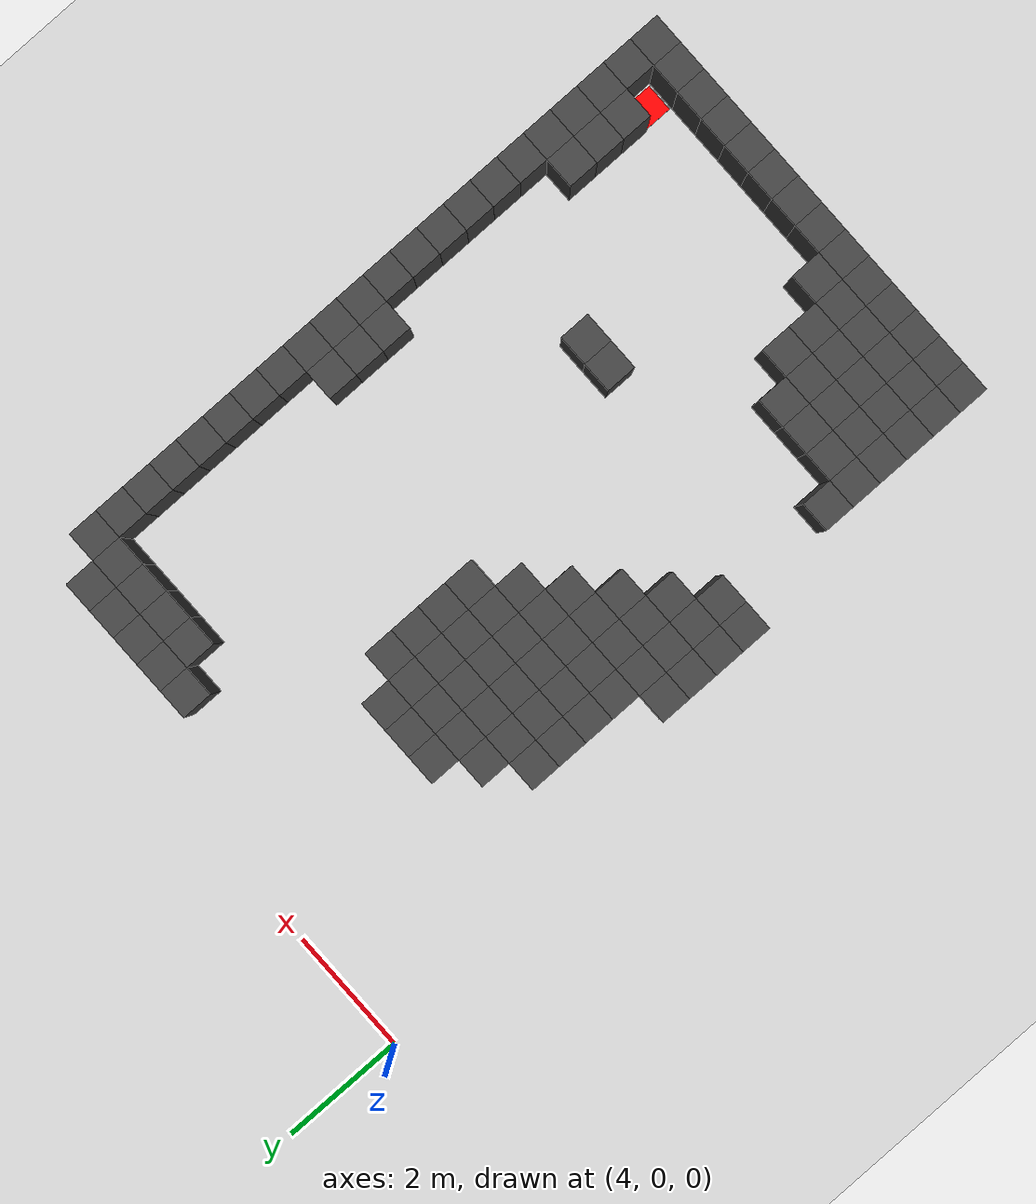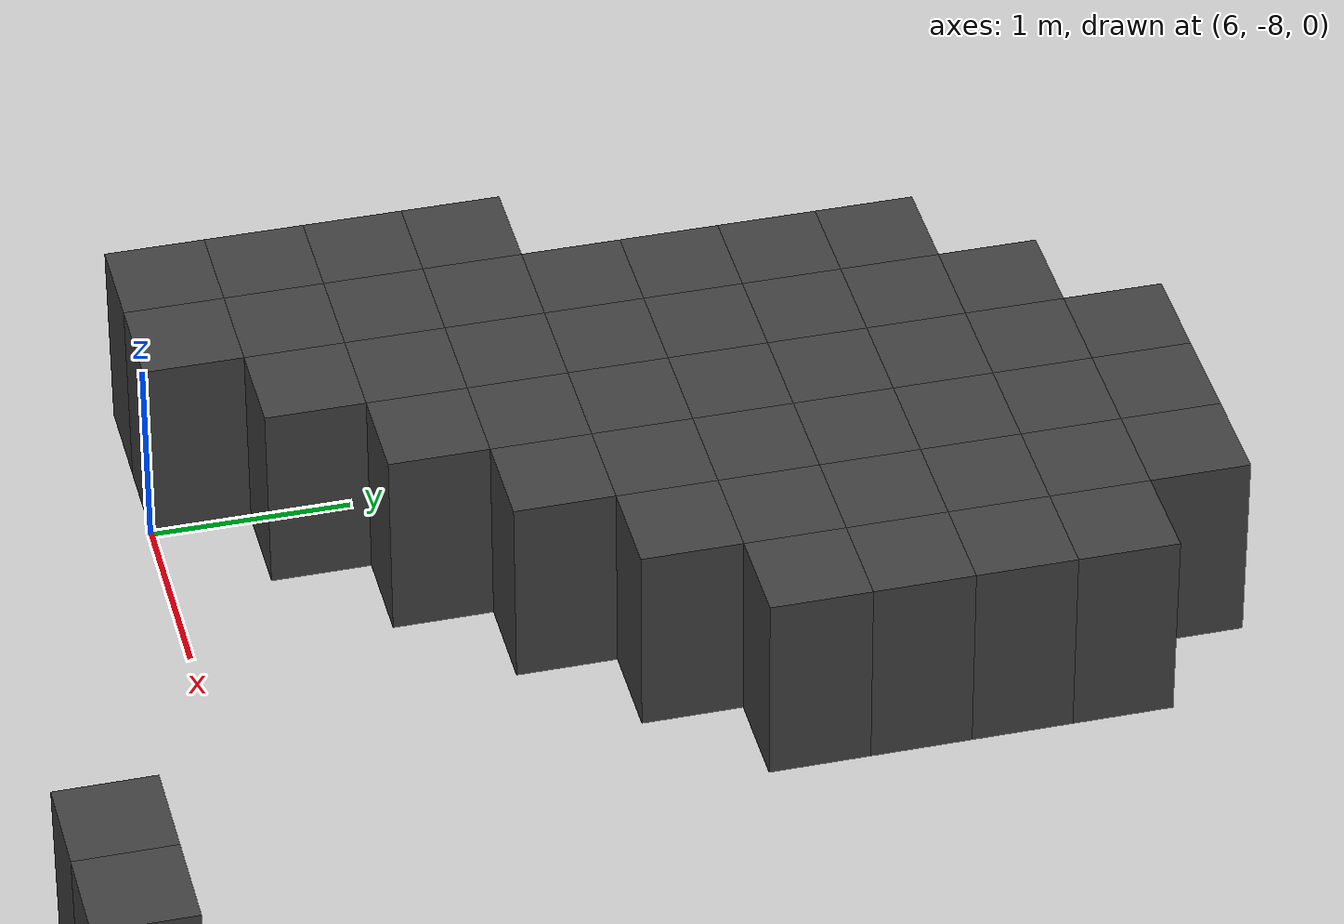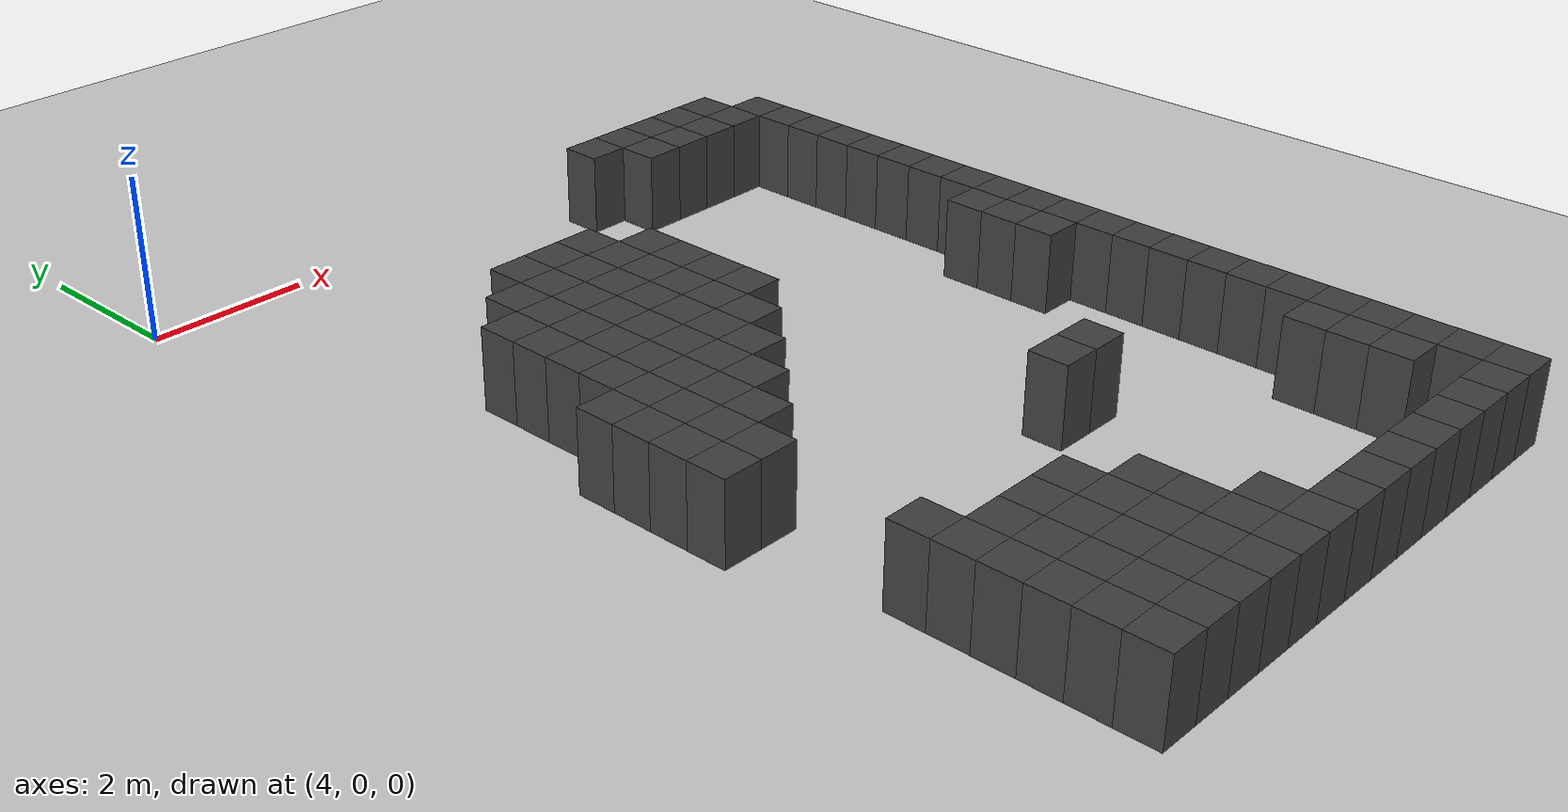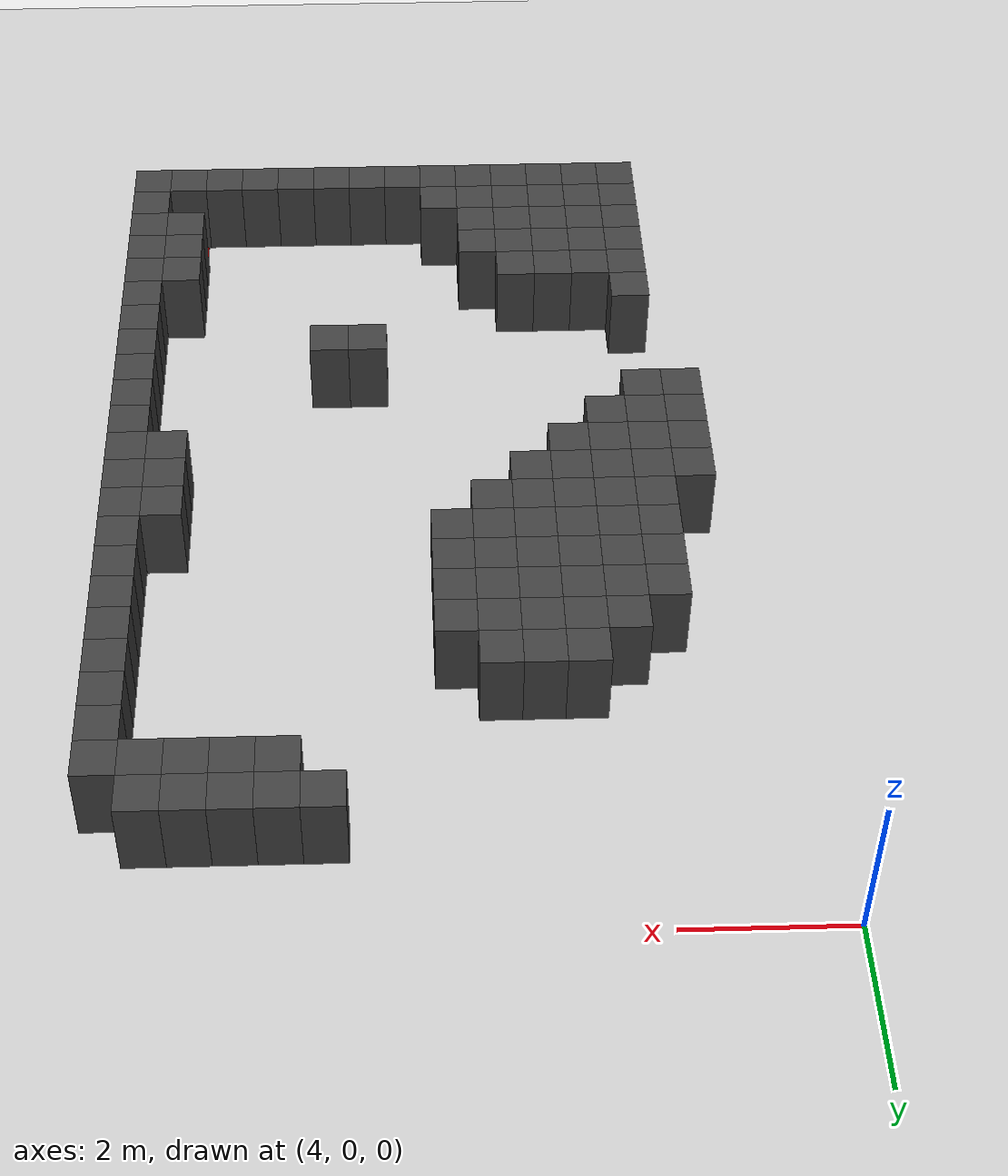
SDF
<sdf version="1.7">
 <world name="map_9826">
  <model name="ground_plane">
   <static>true</static>
   <link name="link">
    <collision name="collision">
     <geometry><plane><normal>0 0 1</normal><size>200 200</size></plane></geometry>
    </collision>
    <visual name="visual">
     <geometry><plane><normal>0 0 1</normal><size>200 200</size></plane></geometry>
     <material><ambient>0.8 0.8 0.8 1</ambient><diffuse>0.8 0.8 0.8 1</diffuse></material>
    </visual>
   </link>
  </model>
  <model name="maze_environment">
   <static>true</static>
   <link name="wall_601">
    <pose>9.750 -1.250 0.500 0 0 0</pose>
    <collision name="col"><geometry><box><size>0.5 0.5 1.0</size></box></geometry></collision>
    <visual name="vis">
     <geometry><box><size>0.5 0.5 1.0</size></box></geometry>
     <material><ambient>0.15 0.15 0.15 1</ambient><diffuse>0.25 0.25 0.25 1</diffuse></material>
    </visual>
   </link>
   <link name="wall_602">
    <pose>10.250 -1.250 0.500 0 0 0</pose>
    <collision name="col"><geometry><box><size>0.5 0.5 1.0</size></box></geometry></collision>
    <visual name="vis">
     <geometry><box><size>0.5 0.5 1.0</size></box></geometry>
     <material><ambient>0.15 0.15 0.15 1</ambient><diffuse>0.25 0.25 0.25 1</diffuse></material>
    </visual>
   </link>
   <link name="wall_603">
    <pose>10.750 -1.250 0.500 0 0 0</pose>
    <collision name="col"><geometry><box><size>0.5 0.5 1.0</size></box></geometry></collision>
    <visual name="vis">
     <geometry><box><size>0.5 0.5 1.0</size></box></geometry>
     <material><ambient>0.15 0.15 0.15 1</ambient><diffuse>0.25 0.25 0.25 1</diffuse></material>
    </visual>
   </link>
   <link name="wall_604">
    <pose>11.250 -1.250 0.500 0 0 0</pose>
    <collision name="col"><geometry><box><size>0.5 0.5 1.0</size></box></geometry></collision>
    <visual name="vis">
     <geometry><box><size>0.5 0.5 1.0</size></box></geometry>
     <material><ambient>0.15 0.15 0.15 1</ambient><diffuse>0.25 0.25 0.25 1</diffuse></material>
    </visual>
   </link>
   <link name="wall_605">
    <pose>11.750 -1.250 0.500 0 0 0</pose>
    <collision name="col"><geometry><box><size>0.5 0.5 1.0</size></box></geometry></collision>
    <visual name="vis">
     <geometry><box><size>0.5 0.5 1.0</size></box></geometry>
     <material><ambient>0.15 0.15 0.15 1</ambient><diffuse>0.25 0.25 0.25 1</diffuse></material>
    </visual>
   </link>
   <link name="wall_624">
    <pose>10.250 -1.750 0.500 0 0 0</pose>
    <collision name="col"><geometry><box><size>0.5 0.5 1.0</size></box></geometry></collision>
    <visual name="vis">
     <geometry><box><size>0.5 0.5 1.0</size></box></geometry>
     <material><ambient>0.15 0.15 0.15 1</ambient><diffuse>0.25 0.25 0.25 1</diffuse></material>
    </visual>
   </link>
   <link name="wall_625">
    <pose>10.750 -1.750 0.500 0 0 0</pose>
    <collision name="col"><geometry><box><size>0.5 0.5 1.0</size></box></geometry></collision>
    <visual name="vis">
     <geometry><box><size>0.5 0.5 1.0</size></box></geometry>
     <material><ambient>0.15 0.15 0.15 1</ambient><diffuse>0.25 0.25 0.25 1</diffuse></material>
    </visual>
   </link>
   <link name="wall_626">
    <pose>11.250 -1.750 0.500 0 0 0</pose>
    <collision name="col"><geometry><box><size>0.5 0.5 1.0</size></box></geometry></collision>
    <visual name="vis">
     <geometry><box><size>0.5 0.5 1.0</size></box></geometry>
     <material><ambient>0.15 0.15 0.15 1</ambient><diffuse>0.25 0.25 0.25 1</diffuse></material>
    </visual>
   </link>
   <link name="wall_627">
    <pose>11.750 -1.750 0.500 0 0 0</pose>
    <collision name="col"><geometry><box><size>0.5 0.5 1.0</size></box></geometry></collision>
    <visual name="vis">
     <geometry><box><size>0.5 0.5 1.0</size></box></geometry>
     <material><ambient>0.15 0.15 0.15 1</ambient><diffuse>0.25 0.25 0.25 1</diffuse></material>
    </visual>
   </link>
   <link name="wall_628">
    <pose>12.250 -1.750 0.500 0 0 0</pose>
    <collision name="col"><geometry><box><size>0.5 0.5 1.0</size></box></geometry></collision>
    <visual name="vis">
     <geometry><box><size>0.5 0.5 1.0</size></box></geometry>
     <material><ambient>0.15 0.15 0.15 1</ambient><diffuse>0.25 0.25 0.25 1</diffuse></material>
    </visual>
   </link>
   <link name="wall_645">
    <pose>12.250 -2.250 0.500 0 0 0</pose>
    <collision name="col"><geometry><box><size>0.5 0.5 1.0</size></box></geometry></collision>
    <visual name="vis">
     <geometry><box><size>0.5 0.5 1.0</size></box></geometry>
     <material><ambient>0.15 0.15 0.15 1</ambient><diffuse>0.25 0.25 0.25 1</diffuse></material>
    </visual>
   </link>
   <link name="wall_660">
    <pose>12.250 -2.750 0.500 0 0 0</pose>
    <collision name="col"><geometry><box><size>0.5 0.5 1.0</size></box></geometry></collision>
    <visual name="vis">
     <geometry><box><size>0.5 0.5 1.0</size></box></geometry>
     <material><ambient>0.15 0.15 0.15 1</ambient><diffuse>0.25 0.25 0.25 1</diffuse></material>
    </visual>
   </link>
   <link name="wall_673">
    <pose>6.750 -3.250 0.500 0 0 0</pose>
    <collision name="col"><geometry><box><size>0.5 0.5 1.0</size></box></geometry></collision>
    <visual name="vis">
     <geometry><box><size>0.5 0.5 1.0</size></box></geometry>
     <material><ambient>0.15 0.15 0.15 1</ambient><diffuse>0.25 0.25 0.25 1</diffuse></material>
    </visual>
   </link>
   <link name="wall_674">
    <pose>7.250 -3.250 0.500 0 0 0</pose>
    <collision name="col"><geometry><box><size>0.5 0.5 1.0</size></box></geometry></collision>
    <visual name="vis">
     <geometry><box><size>0.5 0.5 1.0</size></box></geometry>
     <material><ambient>0.15 0.15 0.15 1</ambient><diffuse>0.25 0.25 0.25 1</diffuse></material>
    </visual>
   </link>
   <link name="wall_675">
    <pose>7.750 -3.250 0.500 0 0 0</pose>
    <collision name="col"><geometry><box><size>0.5 0.5 1.0</size></box></geometry></collision>
    <visual name="vis">
     <geometry><box><size>0.5 0.5 1.0</size></box></geometry>
     <material><ambient>0.15 0.15 0.15 1</ambient><diffuse>0.25 0.25 0.25 1</diffuse></material>
    </visual>
   </link>
   <link name="wall_676">
    <pose>12.250 -3.250 0.500 0 0 0</pose>
    <collision name="col"><geometry><box><size>0.5 0.5 1.0</size></box></geometry></collision>
    <visual name="vis">
     <geometry><box><size>0.5 0.5 1.0</size></box></geometry>
     <material><ambient>0.15 0.15 0.15 1</ambient><diffuse>0.25 0.25 0.25 1</diffuse></material>
    </visual>
   </link>
   <link name="wall_685">
    <pose>6.250 -3.750 0.500 0 0 0</pose>
    <collision name="col"><geometry><box><size>0.5 0.5 1.0</size></box></geometry></collision>
    <visual name="vis">
     <geometry><box><size>0.5 0.5 1.0</size></box></geometry>
     <material><ambient>0.15 0.15 0.15 1</ambient><diffuse>0.25 0.25 0.25 1</diffuse></material>
    </visual>
   </link>
   <link name="wall_686">
    <pose>6.750 -3.750 0.500 0 0 0</pose>
    <collision name="col"><geometry><box><size>0.5 0.5 1.0</size></box></geometry></collision>
    <visual name="vis">
     <geometry><box><size>0.5 0.5 1.0</size></box></geometry>
     <material><ambient>0.15 0.15 0.15 1</ambient><diffuse>0.25 0.25 0.25 1</diffuse></material>
    </visual>
   </link>
   <link name="wall_687">
    <pose>7.250 -3.750 0.500 0 0 0</pose>
    <collision name="col"><geometry><box><size>0.5 0.5 1.0</size></box></geometry></collision>
    <visual name="vis">
     <geometry><box><size>0.5 0.5 1.0</size></box></geometry>
     <material><ambient>0.15 0.15 0.15 1</ambient><diffuse>0.25 0.25 0.25 1</diffuse></material>
    </visual>
   </link>
   <link name="wall_688">
    <pose>7.750 -3.750 0.500 0 0 0</pose>
    <collision name="col"><geometry><box><size>0.5 0.5 1.0</size></box></geometry></collision>
    <visual name="vis">
     <geometry><box><size>0.5 0.5 1.0</size></box></geometry>
     <material><ambient>0.15 0.15 0.15 1</ambient><diffuse>0.25 0.25 0.25 1</diffuse></material>
    </visual>
   </link>
   <link name="wall_689">
    <pose>8.250 -3.750 0.500 0 0 0</pose>
    <collision name="col"><geometry><box><size>0.5 0.5 1.0</size></box></geometry></collision>
    <visual name="vis">
     <geometry><box><size>0.5 0.5 1.0</size></box></geometry>
     <material><ambient>0.15 0.15 0.15 1</ambient><diffuse>0.25 0.25 0.25 1</diffuse></material>
    </visual>
   </link>
   <link name="wall_690">
    <pose>12.250 -3.750 0.500 0 0 0</pose>
    <collision name="col"><geometry><box><size>0.5 0.5 1.0</size></box></geometry></collision>
    <visual name="vis">
     <geometry><box><size>0.5 0.5 1.0</size></box></geometry>
     <material><ambient>0.15 0.15 0.15 1</ambient><diffuse>0.25 0.25 0.25 1</diffuse></material>
    </visual>
   </link>
   <link name="wall_695">
    <pose>5.750 -4.250 0.500 0 0 0</pose>
    <collision name="col"><geometry><box><size>0.5 0.5 1.0</size></box></geometry></collision>
    <visual name="vis">
     <geometry><box><size>0.5 0.5 1.0</size></box></geometry>
     <material><ambient>0.15 0.15 0.15 1</ambient><diffuse>0.25 0.25 0.25 1</diffuse></material>
    </visual>
   </link>
   <link name="wall_696">
    <pose>6.250 -4.250 0.500 0 0 0</pose>
    <collision name="col"><geometry><box><size>0.5 0.5 1.0</size></box></geometry></collision>
    <visual name="vis">
     <geometry><box><size>0.5 0.5 1.0</size></box></geometry>
     <material><ambient>0.15 0.15 0.15 1</ambient><diffuse>0.25 0.25 0.25 1</diffuse></material>
    </visual>
   </link>
   <link name="wall_697">
    <pose>6.750 -4.250 0.500 0 0 0</pose>
    <collision name="col"><geometry><box><size>0.5 0.5 1.0</size></box></geometry></collision>
    <visual name="vis">
     <geometry><box><size>0.5 0.5 1.0</size></box></geometry>
     <material><ambient>0.15 0.15 0.15 1</ambient><diffuse>0.25 0.25 0.25 1</diffuse></material>
    </visual>
   </link>
   <link name="wall_698">
    <pose>7.250 -4.250 0.500 0 0 0</pose>
    <collision name="col"><geometry><box><size>0.5 0.5 1.0</size></box></geometry></collision>
    <visual name="vis">
     <geometry><box><size>0.5 0.5 1.0</size></box></geometry>
     <material><ambient>0.15 0.15 0.15 1</ambient><diffuse>0.25 0.25 0.25 1</diffuse></material>
    </visual>
   </link>
   <link name="wall_699">
    <pose>7.750 -4.250 0.500 0 0 0</pose>
    <collision name="col"><geometry><box><size>0.5 0.5 1.0</size></box></geometry></collision>
    <visual name="vis">
     <geometry><box><size>0.5 0.5 1.0</size></box></geometry>
     <material><ambient>0.15 0.15 0.15 1</ambient><diffuse>0.25 0.25 0.25 1</diffuse></material>
    </visual>
   </link>
   <link name="wall_700">
    <pose>8.250 -4.250 0.500 0 0 0</pose>
    <collision name="col"><geometry><box><size>0.5 0.5 1.0</size></box></geometry></collision>
    <visual name="vis">
     <geometry><box><size>0.5 0.5 1.0</size></box></geometry>
     <material><ambient>0.15 0.15 0.15 1</ambient><diffuse>0.25 0.25 0.25 1</diffuse></material>
    </visual>
   </link>
   <link name="wall_701">
    <pose>12.250 -4.250 0.500 0 0 0</pose>
    <collision name="col"><geometry><box><size>0.5 0.5 1.0</size></box></geometry></collision>
    <visual name="vis">
     <geometry><box><size>0.5 0.5 1.0</size></box></geometry>
     <material><ambient>0.15 0.15 0.15 1</ambient><diffuse>0.25 0.25 0.25 1</diffuse></material>
    </visual>
   </link>
   <link name="wall_710">
    <pose>5.750 -4.750 0.500 0 0 0</pose>
    <collision name="col"><geometry><box><size>0.5 0.5 1.0</size></box></geometry></collision>
    <visual name="vis">
     <geometry><box><size>0.5 0.5 1.0</size></box></geometry>
     <material><ambient>0.15 0.15 0.15 1</ambient><diffuse>0.25 0.25 0.25 1</diffuse></material>
    </visual>
   </link>
   <link name="wall_711">
    <pose>6.250 -4.750 0.500 0 0 0</pose>
    <collision name="col"><geometry><box><size>0.5 0.5 1.0</size></box></geometry></collision>
    <visual name="vis">
     <geometry><box><size>0.5 0.5 1.0</size></box></geometry>
     <material><ambient>0.15 0.15 0.15 1</ambient><diffuse>0.25 0.25 0.25 1</diffuse></material>
    </visual>
   </link>
   <link name="wall_712">
    <pose>6.750 -4.750 0.500 0 0 0</pose>
    <collision name="col"><geometry><box><size>0.5 0.5 1.0</size></box></geometry></collision>
    <visual name="vis">
     <geometry><box><size>0.5 0.5 1.0</size></box></geometry>
     <material><ambient>0.15 0.15 0.15 1</ambient><diffuse>0.25 0.25 0.25 1</diffuse></material>
    </visual>
   </link>
   <link name="wall_713">
    <pose>7.250 -4.750 0.500 0 0 0</pose>
    <collision name="col"><geometry><box><size>0.5 0.5 1.0</size></box></geometry></collision>
    <visual name="vis">
     <geometry><box><size>0.5 0.5 1.0</size></box></geometry>
     <material><ambient>0.15 0.15 0.15 1</ambient><diffuse>0.25 0.25 0.25 1</diffuse></material>
    </visual>
   </link>
   <link name="wall_714">
    <pose>7.750 -4.750 0.500 0 0 0</pose>
    <collision name="col"><geometry><box><size>0.5 0.5 1.0</size></box></geometry></collision>
    <visual name="vis">
     <geometry><box><size>0.5 0.5 1.0</size></box></geometry>
     <material><ambient>0.15 0.15 0.15 1</ambient><diffuse>0.25 0.25 0.25 1</diffuse></material>
    </visual>
   </link>
   <link name="wall_715">
    <pose>8.250 -4.750 0.500 0 0 0</pose>
    <collision name="col"><geometry><box><size>0.5 0.5 1.0</size></box></geometry></collision>
    <visual name="vis">
     <geometry><box><size>0.5 0.5 1.0</size></box></geometry>
     <material><ambient>0.15 0.15 0.15 1</ambient><diffuse>0.25 0.25 0.25 1</diffuse></material>
    </visual>
   </link>
   <link name="wall_716">
    <pose>12.250 -4.750 0.500 0 0 0</pose>
    <collision name="col"><geometry><box><size>0.5 0.5 1.0</size></box></geometry></collision>
    <visual name="vis">
     <geometry><box><size>0.5 0.5 1.0</size></box></geometry>
     <material><ambient>0.15 0.15 0.15 1</ambient><diffuse>0.25 0.25 0.25 1</diffuse></material>
    </visual>
   </link>
   <link name="wall_728">
    <pose>5.750 -5.250 0.500 0 0 0</pose>
    <collision name="col"><geometry><box><size>0.5 0.5 1.0</size></box></geometry></collision>
    <visual name="vis">
     <geometry><box><size>0.5 0.5 1.0</size></box></geometry>
     <material><ambient>0.15 0.15 0.15 1</ambient><diffuse>0.25 0.25 0.25 1</diffuse></material>
    </visual>
   </link>
   <link name="wall_729">
    <pose>6.250 -5.250 0.500 0 0 0</pose>
    <collision name="col"><geometry><box><size>0.5 0.5 1.0</size></box></geometry></collision>
    <visual name="vis">
     <geometry><box><size>0.5 0.5 1.0</size></box></geometry>
     <material><ambient>0.15 0.15 0.15 1</ambient><diffuse>0.25 0.25 0.25 1</diffuse></material>
    </visual>
   </link>
   <link name="wall_730">
    <pose>6.750 -5.250 0.500 0 0 0</pose>
    <collision name="col"><geometry><box><size>0.5 0.5 1.0</size></box></geometry></collision>
    <visual name="vis">
     <geometry><box><size>0.5 0.5 1.0</size></box></geometry>
     <material><ambient>0.15 0.15 0.15 1</ambient><diffuse>0.25 0.25 0.25 1</diffuse></material>
    </visual>
   </link>
   <link name="wall_731">
    <pose>7.250 -5.250 0.500 0 0 0</pose>
    <collision name="col"><geometry><box><size>0.5 0.5 1.0</size></box></geometry></collision>
    <visual name="vis">
     <geometry><box><size>0.5 0.5 1.0</size></box></geometry>
     <material><ambient>0.15 0.15 0.15 1</ambient><diffuse>0.25 0.25 0.25 1</diffuse></material>
    </visual>
   </link>
   <link name="wall_732">
    <pose>7.750 -5.250 0.500 0 0 0</pose>
    <collision name="col"><geometry><box><size>0.5 0.5 1.0</size></box></geometry></collision>
    <visual name="vis">
     <geometry><box><size>0.5 0.5 1.0</size></box></geometry>
     <material><ambient>0.15 0.15 0.15 1</ambient><diffuse>0.25 0.25 0.25 1</diffuse></material>
    </visual>
   </link>
   <link name="wall_733">
    <pose>8.250 -5.250 0.500 0 0 0</pose>
    <collision name="col"><geometry><box><size>0.5 0.5 1.0</size></box></geometry></collision>
    <visual name="vis">
     <geometry><box><size>0.5 0.5 1.0</size></box></geometry>
     <material><ambient>0.15 0.15 0.15 1</ambient><diffuse>0.25 0.25 0.25 1</diffuse></material>
    </visual>
   </link>
   <link name="wall_734">
    <pose>12.250 -5.250 0.500 0 0 0</pose>
    <collision name="col"><geometry><box><size>0.5 0.5 1.0</size></box></geometry></collision>
    <visual name="vis">
     <geometry><box><size>0.5 0.5 1.0</size></box></geometry>
     <material><ambient>0.15 0.15 0.15 1</ambient><diffuse>0.25 0.25 0.25 1</diffuse></material>
    </visual>
   </link>
   <link name="wall_748">
    <pose>5.750 -5.750 0.500 0 0 0</pose>
    <collision name="col"><geometry><box><size>0.5 0.5 1.0</size></box></geometry></collision>
    <visual name="vis">
     <geometry><box><size>0.5 0.5 1.0</size></box></geometry>
     <material><ambient>0.15 0.15 0.15 1</ambient><diffuse>0.25 0.25 0.25 1</diffuse></material>
    </visual>
   </link>
   <link name="wall_749">
    <pose>6.250 -5.750 0.500 0 0 0</pose>
    <collision name="col"><geometry><box><size>0.5 0.5 1.0</size></box></geometry></collision>
    <visual name="vis">
     <geometry><box><size>0.5 0.5 1.0</size></box></geometry>
     <material><ambient>0.15 0.15 0.15 1</ambient><diffuse>0.25 0.25 0.25 1</diffuse></material>
    </visual>
   </link>
   <link name="wall_750">
    <pose>6.750 -5.750 0.500 0 0 0</pose>
    <collision name="col"><geometry><box><size>0.5 0.5 1.0</size></box></geometry></collision>
    <visual name="vis">
     <geometry><box><size>0.5 0.5 1.0</size></box></geometry>
     <material><ambient>0.15 0.15 0.15 1</ambient><diffuse>0.25 0.25 0.25 1</diffuse></material>
    </visual>
   </link>
   <link name="wall_751">
    <pose>7.250 -5.750 0.500 0 0 0</pose>
    <collision name="col"><geometry><box><size>0.5 0.5 1.0</size></box></geometry></collision>
    <visual name="vis">
     <geometry><box><size>0.5 0.5 1.0</size></box></geometry>
     <material><ambient>0.15 0.15 0.15 1</ambient><diffuse>0.25 0.25 0.25 1</diffuse></material>
    </visual>
   </link>
   <link name="wall_752">
    <pose>7.750 -5.750 0.500 0 0 0</pose>
    <collision name="col"><geometry><box><size>0.5 0.5 1.0</size></box></geometry></collision>
    <visual name="vis">
     <geometry><box><size>0.5 0.5 1.0</size></box></geometry>
     <material><ambient>0.15 0.15 0.15 1</ambient><diffuse>0.25 0.25 0.25 1</diffuse></material>
    </visual>
   </link>
   <link name="wall_753">
    <pose>11.750 -5.750 0.500 0 0 0</pose>
    <collision name="col"><geometry><box><size>0.5 0.5 1.0</size></box></geometry></collision>
    <visual name="vis">
     <geometry><box><size>0.5 0.5 1.0</size></box></geometry>
     <material><ambient>0.15 0.15 0.15 1</ambient><diffuse>0.25 0.25 0.25 1</diffuse></material>
    </visual>
   </link>
   <link name="wall_754">
    <pose>12.250 -5.750 0.500 0 0 0</pose>
    <collision name="col"><geometry><box><size>0.5 0.5 1.0</size></box></geometry></collision>
    <visual name="vis">
     <geometry><box><size>0.5 0.5 1.0</size></box></geometry>
     <material><ambient>0.15 0.15 0.15 1</ambient><diffuse>0.25 0.25 0.25 1</diffuse></material>
    </visual>
   </link>
   <link name="wall_771">
    <pose>5.250 -6.250 0.500 0 0 0</pose>
    <collision name="col"><geometry><box><size>0.5 0.5 1.0</size></box></geometry></collision>
    <visual name="vis">
     <geometry><box><size>0.5 0.5 1.0</size></box></geometry>
     <material><ambient>0.15 0.15 0.15 1</ambient><diffuse>0.25 0.25 0.25 1</diffuse></material>
    </visual>
   </link>
   <link name="wall_772">
    <pose>5.750 -6.250 0.500 0 0 0</pose>
    <collision name="col"><geometry><box><size>0.5 0.5 1.0</size></box></geometry></collision>
    <visual name="vis">
     <geometry><box><size>0.5 0.5 1.0</size></box></geometry>
     <material><ambient>0.15 0.15 0.15 1</ambient><diffuse>0.25 0.25 0.25 1</diffuse></material>
    </visual>
   </link>
   <link name="wall_773">
    <pose>6.250 -6.250 0.500 0 0 0</pose>
    <collision name="col"><geometry><box><size>0.5 0.5 1.0</size></box></geometry></collision>
    <visual name="vis">
     <geometry><box><size>0.5 0.5 1.0</size></box></geometry>
     <material><ambient>0.15 0.15 0.15 1</ambient><diffuse>0.25 0.25 0.25 1</diffuse></material>
    </visual>
   </link>
   <link name="wall_774">
    <pose>6.750 -6.250 0.500 0 0 0</pose>
    <collision name="col"><geometry><box><size>0.5 0.5 1.0</size></box></geometry></collision>
    <visual name="vis">
     <geometry><box><size>0.5 0.5 1.0</size></box></geometry>
     <material><ambient>0.15 0.15 0.15 1</ambient><diffuse>0.25 0.25 0.25 1</diffuse></material>
    </visual>
   </link>
   <link name="wall_775">
    <pose>7.250 -6.250 0.500 0 0 0</pose>
    <collision name="col"><geometry><box><size>0.5 0.5 1.0</size></box></geometry></collision>
    <visual name="vis">
     <geometry><box><size>0.5 0.5 1.0</size></box></geometry>
     <material><ambient>0.15 0.15 0.15 1</ambient><diffuse>0.25 0.25 0.25 1</diffuse></material>
    </visual>
   </link>
   <link name="wall_776">
    <pose>11.750 -6.250 0.500 0 0 0</pose>
    <collision name="col"><geometry><box><size>0.5 0.5 1.0</size></box></geometry></collision>
    <visual name="vis">
     <geometry><box><size>0.5 0.5 1.0</size></box></geometry>
     <material><ambient>0.15 0.15 0.15 1</ambient><diffuse>0.25 0.25 0.25 1</diffuse></material>
    </visual>
   </link>
   <link name="wall_777">
    <pose>12.250 -6.250 0.500 0 0 0</pose>
    <collision name="col"><geometry><box><size>0.5 0.5 1.0</size></box></geometry></collision>
    <visual name="vis">
     <geometry><box><size>0.5 0.5 1.0</size></box></geometry>
     <material><ambient>0.15 0.15 0.15 1</ambient><diffuse>0.25 0.25 0.25 1</diffuse></material>
    </visual>
   </link>
   <link name="wall_794">
    <pose>5.250 -6.750 0.500 0 0 0</pose>
    <collision name="col"><geometry><box><size>0.5 0.5 1.0</size></box></geometry></collision>
    <visual name="vis">
     <geometry><box><size>0.5 0.5 1.0</size></box></geometry>
     <material><ambient>0.15 0.15 0.15 1</ambient><diffuse>0.25 0.25 0.25 1</diffuse></material>
    </visual>
   </link>
   <link name="wall_795">
    <pose>5.750 -6.750 0.500 0 0 0</pose>
    <collision name="col"><geometry><box><size>0.5 0.5 1.0</size></box></geometry></collision>
    <visual name="vis">
     <geometry><box><size>0.5 0.5 1.0</size></box></geometry>
     <material><ambient>0.15 0.15 0.15 1</ambient><diffuse>0.25 0.25 0.25 1</diffuse></material>
    </visual>
   </link>
   <link name="wall_796">
    <pose>6.250 -6.750 0.500 0 0 0</pose>
    <collision name="col"><geometry><box><size>0.5 0.5 1.0</size></box></geometry></collision>
    <visual name="vis">
     <geometry><box><size>0.5 0.5 1.0</size></box></geometry>
     <material><ambient>0.15 0.15 0.15 1</ambient><diffuse>0.25 0.25 0.25 1</diffuse></material>
    </visual>
   </link>
   <link name="wall_797">
    <pose>6.750 -6.750 0.500 0 0 0</pose>
    <collision name="col"><geometry><box><size>0.5 0.5 1.0</size></box></geometry></collision>
    <visual name="vis">
     <geometry><box><size>0.5 0.5 1.0</size></box></geometry>
     <material><ambient>0.15 0.15 0.15 1</ambient><diffuse>0.25 0.25 0.25 1</diffuse></material>
    </visual>
   </link>
   <link name="wall_798">
    <pose>11.750 -6.750 0.500 0 0 0</pose>
    <collision name="col"><geometry><box><size>0.5 0.5 1.0</size></box></geometry></collision>
    <visual name="vis">
     <geometry><box><size>0.5 0.5 1.0</size></box></geometry>
     <material><ambient>0.15 0.15 0.15 1</ambient><diffuse>0.25 0.25 0.25 1</diffuse></material>
    </visual>
   </link>
   <link name="wall_799">
    <pose>12.250 -6.750 0.500 0 0 0</pose>
    <collision name="col"><geometry><box><size>0.5 0.5 1.0</size></box></geometry></collision>
    <visual name="vis">
     <geometry><box><size>0.5 0.5 1.0</size></box></geometry>
     <material><ambient>0.15 0.15 0.15 1</ambient><diffuse>0.25 0.25 0.25 1</diffuse></material>
    </visual>
   </link>
   <link name="wall_812">
    <pose>5.250 -7.250 0.500 0 0 0</pose>
    <collision name="col"><geometry><box><size>0.5 0.5 1.0</size></box></geometry></collision>
    <visual name="vis">
     <geometry><box><size>0.5 0.5 1.0</size></box></geometry>
     <material><ambient>0.15 0.15 0.15 1</ambient><diffuse>0.25 0.25 0.25 1</diffuse></material>
    </visual>
   </link>
   <link name="wall_813">
    <pose>5.750 -7.250 0.500 0 0 0</pose>
    <collision name="col"><geometry><box><size>0.5 0.5 1.0</size></box></geometry></collision>
    <visual name="vis">
     <geometry><box><size>0.5 0.5 1.0</size></box></geometry>
     <material><ambient>0.15 0.15 0.15 1</ambient><diffuse>0.25 0.25 0.25 1</diffuse></material>
    </visual>
   </link>
   <link name="wall_814">
    <pose>6.250 -7.250 0.500 0 0 0</pose>
    <collision name="col"><geometry><box><size>0.5 0.5 1.0</size></box></geometry></collision>
    <visual name="vis">
     <geometry><box><size>0.5 0.5 1.0</size></box></geometry>
     <material><ambient>0.15 0.15 0.15 1</ambient><diffuse>0.25 0.25 0.25 1</diffuse></material>
    </visual>
   </link>
   <link name="wall_815">
    <pose>12.250 -7.250 0.500 0 0 0</pose>
    <collision name="col"><geometry><box><size>0.5 0.5 1.0</size></box></geometry></collision>
    <visual name="vis">
     <geometry><box><size>0.5 0.5 1.0</size></box></geometry>
     <material><ambient>0.15 0.15 0.15 1</ambient><diffuse>0.25 0.25 0.25 1</diffuse></material>
    </visual>
   </link>
   <link name="wall_828">
    <pose>5.250 -7.750 0.500 0 0 0</pose>
    <collision name="col"><geometry><box><size>0.5 0.5 1.0</size></box></geometry></collision>
    <visual name="vis">
     <geometry><box><size>0.5 0.5 1.0</size></box></geometry>
     <material><ambient>0.15 0.15 0.15 1</ambient><diffuse>0.25 0.25 0.25 1</diffuse></material>
    </visual>
   </link>
   <link name="wall_829">
    <pose>5.750 -7.750 0.500 0 0 0</pose>
    <collision name="col"><geometry><box><size>0.5 0.5 1.0</size></box></geometry></collision>
    <visual name="vis">
     <geometry><box><size>0.5 0.5 1.0</size></box></geometry>
     <material><ambient>0.15 0.15 0.15 1</ambient><diffuse>0.25 0.25 0.25 1</diffuse></material>
    </visual>
   </link>
   <link name="wall_830">
    <pose>12.250 -7.750 0.500 0 0 0</pose>
    <collision name="col"><geometry><box><size>0.5 0.5 1.0</size></box></geometry></collision>
    <visual name="vis">
     <geometry><box><size>0.5 0.5 1.0</size></box></geometry>
     <material><ambient>0.15 0.15 0.15 1</ambient><diffuse>0.25 0.25 0.25 1</diffuse></material>
    </visual>
   </link>
   <link name="wall_848">
    <pose>12.250 -8.250 0.500 0 0 0</pose>
    <collision name="col"><geometry><box><size>0.5 0.5 1.0</size></box></geometry></collision>
    <visual name="vis">
     <geometry><box><size>0.5 0.5 1.0</size></box></geometry>
     <material><ambient>0.15 0.15 0.15 1</ambient><diffuse>0.25 0.25 0.25 1</diffuse></material>
    </visual>
   </link>
   <link name="wall_868">
    <pose>9.250 -8.750 0.500 0 0 0</pose>
    <collision name="col"><geometry><box><size>0.5 0.5 1.0</size></box></geometry></collision>
    <visual name="vis">
     <geometry><box><size>0.5 0.5 1.0</size></box></geometry>
     <material><ambient>0.15 0.15 0.15 1</ambient><diffuse>0.25 0.25 0.25 1</diffuse></material>
    </visual>
   </link>
   <link name="wall_869">
    <pose>9.750 -8.750 0.500 0 0 0</pose>
    <collision name="col"><geometry><box><size>0.5 0.5 1.0</size></box></geometry></collision>
    <visual name="vis">
     <geometry><box><size>0.5 0.5 1.0</size></box></geometry>
     <material><ambient>0.15 0.15 0.15 1</ambient><diffuse>0.25 0.25 0.25 1</diffuse></material>
    </visual>
   </link>
   <link name="wall_870">
    <pose>12.250 -8.750 0.500 0 0 0</pose>
    <collision name="col"><geometry><box><size>0.5 0.5 1.0</size></box></geometry></collision>
    <visual name="vis">
     <geometry><box><size>0.5 0.5 1.0</size></box></geometry>
     <material><ambient>0.15 0.15 0.15 1</ambient><diffuse>0.25 0.25 0.25 1</diffuse></material>
    </visual>
   </link>
   <link name="wall_894">
    <pose>12.250 -9.250 0.500 0 0 0</pose>
    <collision name="col"><geometry><box><size>0.5 0.5 1.0</size></box></geometry></collision>
    <visual name="vis">
     <geometry><box><size>0.5 0.5 1.0</size></box></geometry>
     <material><ambient>0.15 0.15 0.15 1</ambient><diffuse>0.25 0.25 0.25 1</diffuse></material>
    </visual>
   </link>
   <link name="wall_919">
    <pose>5.750 -9.750 0.500 0 0 0</pose>
    <collision name="col"><geometry><box><size>0.5 0.5 1.0</size></box></geometry></collision>
    <visual name="vis">
     <geometry><box><size>0.5 0.5 1.0</size></box></geometry>
     <material><ambient>0.15 0.15 0.15 1</ambient><diffuse>0.25 0.25 0.25 1</diffuse></material>
    </visual>
   </link>
   <link name="wall_920">
    <pose>12.250 -9.750 0.500 0 0 0</pose>
    <collision name="col"><geometry><box><size>0.5 0.5 1.0</size></box></geometry></collision>
    <visual name="vis">
     <geometry><box><size>0.5 0.5 1.0</size></box></geometry>
     <material><ambient>0.15 0.15 0.15 1</ambient><diffuse>0.25 0.25 0.25 1</diffuse></material>
    </visual>
   </link>
   <link name="wall_942">
    <pose>5.750 -10.250 0.500 0 0 0</pose>
    <collision name="col"><geometry><box><size>0.5 0.5 1.0</size></box></geometry></collision>
    <visual name="vis">
     <geometry><box><size>0.5 0.5 1.0</size></box></geometry>
     <material><ambient>0.15 0.15 0.15 1</ambient><diffuse>0.25 0.25 0.25 1</diffuse></material>
    </visual>
   </link>
   <link name="wall_943">
    <pose>6.250 -10.250 0.500 0 0 0</pose>
    <collision name="col"><geometry><box><size>0.5 0.5 1.0</size></box></geometry></collision>
    <visual name="vis">
     <geometry><box><size>0.5 0.5 1.0</size></box></geometry>
     <material><ambient>0.15 0.15 0.15 1</ambient><diffuse>0.25 0.25 0.25 1</diffuse></material>
    </visual>
   </link>
   <link name="wall_944">
    <pose>6.750 -10.250 0.500 0 0 0</pose>
    <collision name="col"><geometry><box><size>0.5 0.5 1.0</size></box></geometry></collision>
    <visual name="vis">
     <geometry><box><size>0.5 0.5 1.0</size></box></geometry>
     <material><ambient>0.15 0.15 0.15 1</ambient><diffuse>0.25 0.25 0.25 1</diffuse></material>
    </visual>
   </link>
   <link name="wall_945">
    <pose>7.250 -10.250 0.500 0 0 0</pose>
    <collision name="col"><geometry><box><size>0.5 0.5 1.0</size></box></geometry></collision>
    <visual name="vis">
     <geometry><box><size>0.5 0.5 1.0</size></box></geometry>
     <material><ambient>0.15 0.15 0.15 1</ambient><diffuse>0.25 0.25 0.25 1</diffuse></material>
    </visual>
   </link>
   <link name="wall_946">
    <pose>11.750 -10.250 0.500 0 0 0</pose>
    <collision name="col"><geometry><box><size>0.5 0.5 1.0</size></box></geometry></collision>
    <visual name="vis">
     <geometry><box><size>0.5 0.5 1.0</size></box></geometry>
     <material><ambient>0.15 0.15 0.15 1</ambient><diffuse>0.25 0.25 0.25 1</diffuse></material>
    </visual>
   </link>
   <link name="wall_947">
    <pose>12.250 -10.250 0.500 0 0 0</pose>
    <collision name="col"><geometry><box><size>0.5 0.5 1.0</size></box></geometry></collision>
    <visual name="vis">
     <geometry><box><size>0.5 0.5 1.0</size></box></geometry>
     <material><ambient>0.15 0.15 0.15 1</ambient><diffuse>0.25 0.25 0.25 1</diffuse></material>
    </visual>
   </link>
   <link name="wall_964">
    <pose>5.750 -10.750 0.500 0 0 0</pose>
    <collision name="col"><geometry><box><size>0.5 0.5 1.0</size></box></geometry></collision>
    <visual name="vis">
     <geometry><box><size>0.5 0.5 1.0</size></box></geometry>
     <material><ambient>0.15 0.15 0.15 1</ambient><diffuse>0.25 0.25 0.25 1</diffuse></material>
    </visual>
   </link>
   <link name="wall_965">
    <pose>6.250 -10.750 0.500 0 0 0</pose>
    <collision name="col"><geometry><box><size>0.5 0.5 1.0</size></box></geometry></collision>
    <visual name="vis">
     <geometry><box><size>0.5 0.5 1.0</size></box></geometry>
     <material><ambient>0.15 0.15 0.15 1</ambient><diffuse>0.25 0.25 0.25 1</diffuse></material>
    </visual>
   </link>
   <link name="wall_966">
    <pose>6.750 -10.750 0.500 0 0 0</pose>
    <collision name="col"><geometry><box><size>0.5 0.5 1.0</size></box></geometry></collision>
    <visual name="vis">
     <geometry><box><size>0.5 0.5 1.0</size></box></geometry>
     <material><ambient>0.15 0.15 0.15 1</ambient><diffuse>0.25 0.25 0.25 1</diffuse></material>
    </visual>
   </link>
   <link name="wall_967">
    <pose>7.250 -10.750 0.500 0 0 0</pose>
    <collision name="col"><geometry><box><size>0.5 0.5 1.0</size></box></geometry></collision>
    <visual name="vis">
     <geometry><box><size>0.5 0.5 1.0</size></box></geometry>
     <material><ambient>0.15 0.15 0.15 1</ambient><diffuse>0.25 0.25 0.25 1</diffuse></material>
    </visual>
   </link>
   <link name="wall_968">
    <pose>7.750 -10.750 0.500 0 0 0</pose>
    <collision name="col"><geometry><box><size>0.5 0.5 1.0</size></box></geometry></collision>
    <visual name="vis">
     <geometry><box><size>0.5 0.5 1.0</size></box></geometry>
     <material><ambient>0.15 0.15 0.15 1</ambient><diffuse>0.25 0.25 0.25 1</diffuse></material>
    </visual>
   </link>
   <link name="wall_969">
    <pose>11.750 -10.750 0.500 0 0 0</pose>
    <collision name="col"><geometry><box><size>0.5 0.5 1.0</size></box></geometry></collision>
    <visual name="vis">
     <geometry><box><size>0.5 0.5 1.0</size></box></geometry>
     <material><ambient>0.15 0.15 0.15 1</ambient><diffuse>0.25 0.25 0.25 1</diffuse></material>
    </visual>
   </link>
   <link name="wall_970">
    <pose>12.250 -10.750 0.500 0 0 0</pose>
    <collision name="col"><geometry><box><size>0.5 0.5 1.0</size></box></geometry></collision>
    <visual name="vis">
     <geometry><box><size>0.5 0.5 1.0</size></box></geometry>
     <material><ambient>0.15 0.15 0.15 1</ambient><diffuse>0.25 0.25 0.25 1</diffuse></material>
    </visual>
   </link>
   <link name="wall_988">
    <pose>5.750 -11.250 0.500 0 0 0</pose>
    <collision name="col"><geometry><box><size>0.5 0.5 1.0</size></box></geometry></collision>
    <visual name="vis">
     <geometry><box><size>0.5 0.5 1.0</size></box></geometry>
     <material><ambient>0.15 0.15 0.15 1</ambient><diffuse>0.25 0.25 0.25 1</diffuse></material>
    </visual>
   </link>
   <link name="wall_989">
    <pose>6.250 -11.250 0.500 0 0 0</pose>
    <collision name="col"><geometry><box><size>0.5 0.5 1.0</size></box></geometry></collision>
    <visual name="vis">
     <geometry><box><size>0.5 0.5 1.0</size></box></geometry>
     <material><ambient>0.15 0.15 0.15 1</ambient><diffuse>0.25 0.25 0.25 1</diffuse></material>
    </visual>
   </link>
   <link name="wall_990">
    <pose>6.750 -11.250 0.500 0 0 0</pose>
    <collision name="col"><geometry><box><size>0.5 0.5 1.0</size></box></geometry></collision>
    <visual name="vis">
     <geometry><box><size>0.5 0.5 1.0</size></box></geometry>
     <material><ambient>0.15 0.15 0.15 1</ambient><diffuse>0.25 0.25 0.25 1</diffuse></material>
    </visual>
   </link>
   <link name="wall_991">
    <pose>7.250 -11.250 0.500 0 0 0</pose>
    <collision name="col"><geometry><box><size>0.5 0.5 1.0</size></box></geometry></collision>
    <visual name="vis">
     <geometry><box><size>0.5 0.5 1.0</size></box></geometry>
     <material><ambient>0.15 0.15 0.15 1</ambient><diffuse>0.25 0.25 0.25 1</diffuse></material>
    </visual>
   </link>
   <link name="wall_992">
    <pose>7.750 -11.250 0.500 0 0 0</pose>
    <collision name="col"><geometry><box><size>0.5 0.5 1.0</size></box></geometry></collision>
    <visual name="vis">
     <geometry><box><size>0.5 0.5 1.0</size></box></geometry>
     <material><ambient>0.15 0.15 0.15 1</ambient><diffuse>0.25 0.25 0.25 1</diffuse></material>
    </visual>
   </link>
   <link name="wall_993">
    <pose>11.750 -11.250 0.500 0 0 0</pose>
    <collision name="col"><geometry><box><size>0.5 0.5 1.0</size></box></geometry></collision>
    <visual name="vis">
     <geometry><box><size>0.5 0.5 1.0</size></box></geometry>
     <material><ambient>0.15 0.15 0.15 1</ambient><diffuse>0.25 0.25 0.25 1</diffuse></material>
    </visual>
   </link>
   <link name="wall_994">
    <pose>12.250 -11.250 0.500 0 0 0</pose>
    <collision name="col"><geometry><box><size>0.5 0.5 1.0</size></box></geometry></collision>
    <visual name="vis">
     <geometry><box><size>0.5 0.5 1.0</size></box></geometry>
     <material><ambient>0.15 0.15 0.15 1</ambient><diffuse>0.25 0.25 0.25 1</diffuse></material>
    </visual>
   </link>
   <link name="wall_1013">
    <pose>5.750 -11.750 0.500 0 0 0</pose>
    <collision name="col"><geometry><box><size>0.5 0.5 1.0</size></box></geometry></collision>
    <visual name="vis">
     <geometry><box><size>0.5 0.5 1.0</size></box></geometry>
     <material><ambient>0.15 0.15 0.15 1</ambient><diffuse>0.25 0.25 0.25 1</diffuse></material>
    </visual>
   </link>
   <link name="wall_1014">
    <pose>6.250 -11.750 0.500 0 0 0</pose>
    <collision name="col"><geometry><box><size>0.5 0.5 1.0</size></box></geometry></collision>
    <visual name="vis">
     <geometry><box><size>0.5 0.5 1.0</size></box></geometry>
     <material><ambient>0.15 0.15 0.15 1</ambient><diffuse>0.25 0.25 0.25 1</diffuse></material>
    </visual>
   </link>
   <link name="wall_1015">
    <pose>6.750 -11.750 0.500 0 0 0</pose>
    <collision name="col"><geometry><box><size>0.5 0.5 1.0</size></box></geometry></collision>
    <visual name="vis">
     <geometry><box><size>0.5 0.5 1.0</size></box></geometry>
     <material><ambient>0.15 0.15 0.15 1</ambient><diffuse>0.25 0.25 0.25 1</diffuse></material>
    </visual>
   </link>
   <link name="wall_1016">
    <pose>7.250 -11.750 0.500 0 0 0</pose>
    <collision name="col"><geometry><box><size>0.5 0.5 1.0</size></box></geometry></collision>
    <visual name="vis">
     <geometry><box><size>0.5 0.5 1.0</size></box></geometry>
     <material><ambient>0.15 0.15 0.15 1</ambient><diffuse>0.25 0.25 0.25 1</diffuse></material>
    </visual>
   </link>
   <link name="wall_1017">
    <pose>7.750 -11.750 0.500 0 0 0</pose>
    <collision name="col"><geometry><box><size>0.5 0.5 1.0</size></box></geometry></collision>
    <visual name="vis">
     <geometry><box><size>0.5 0.5 1.0</size></box></geometry>
     <material><ambient>0.15 0.15 0.15 1</ambient><diffuse>0.25 0.25 0.25 1</diffuse></material>
    </visual>
   </link>
   <link name="wall_1018">
    <pose>8.250 -11.750 0.500 0 0 0</pose>
    <collision name="col"><geometry><box><size>0.5 0.5 1.0</size></box></geometry></collision>
    <visual name="vis">
     <geometry><box><size>0.5 0.5 1.0</size></box></geometry>
     <material><ambient>0.15 0.15 0.15 1</ambient><diffuse>0.25 0.25 0.25 1</diffuse></material>
    </visual>
   </link>
   <link name="wall_1019">
    <pose>12.250 -11.750 0.500 0 0 0</pose>
    <collision name="col"><geometry><box><size>0.5 0.5 1.0</size></box></geometry></collision>
    <visual name="vis">
     <geometry><box><size>0.5 0.5 1.0</size></box></geometry>
     <material><ambient>0.15 0.15 0.15 1</ambient><diffuse>0.25 0.25 0.25 1</diffuse></material>
    </visual>
   </link>
   <link name="wall_1056">
    <pose>5.750 -12.250 0.500 0 0 0</pose>
    <collision name="col"><geometry><box><size>0.5 0.5 1.0</size></box></geometry></collision>
    <visual name="vis">
     <geometry><box><size>0.5 0.5 1.0</size></box></geometry>
     <material><ambient>0.15 0.15 0.15 1</ambient><diffuse>0.25 0.25 0.25 1</diffuse></material>
    </visual>
   </link>
   <link name="wall_1057">
    <pose>6.250 -12.250 0.500 0 0 0</pose>
    <collision name="col"><geometry><box><size>0.5 0.5 1.0</size></box></geometry></collision>
    <visual name="vis">
     <geometry><box><size>0.5 0.5 1.0</size></box></geometry>
     <material><ambient>0.15 0.15 0.15 1</ambient><diffuse>0.25 0.25 0.25 1</diffuse></material>
    </visual>
   </link>
   <link name="wall_1058">
    <pose>6.750 -12.250 0.500 0 0 0</pose>
    <collision name="col"><geometry><box><size>0.5 0.5 1.0</size></box></geometry></collision>
    <visual name="vis">
     <geometry><box><size>0.5 0.5 1.0</size></box></geometry>
     <material><ambient>0.15 0.15 0.15 1</ambient><diffuse>0.25 0.25 0.25 1</diffuse></material>
    </visual>
   </link>
   <link name="wall_1059">
    <pose>7.250 -12.250 0.500 0 0 0</pose>
    <collision name="col"><geometry><box><size>0.5 0.5 1.0</size></box></geometry></collision>
    <visual name="vis">
     <geometry><box><size>0.5 0.5 1.0</size></box></geometry>
     <material><ambient>0.15 0.15 0.15 1</ambient><diffuse>0.25 0.25 0.25 1</diffuse></material>
    </visual>
   </link>
   <link name="wall_1060">
    <pose>7.750 -12.250 0.500 0 0 0</pose>
    <collision name="col"><geometry><box><size>0.5 0.5 1.0</size></box></geometry></collision>
    <visual name="vis">
     <geometry><box><size>0.5 0.5 1.0</size></box></geometry>
     <material><ambient>0.15 0.15 0.15 1</ambient><diffuse>0.25 0.25 0.25 1</diffuse></material>
    </visual>
   </link>
   <link name="wall_1061">
    <pose>8.250 -12.250 0.500 0 0 0</pose>
    <collision name="col"><geometry><box><size>0.5 0.5 1.0</size></box></geometry></collision>
    <visual name="vis">
     <geometry><box><size>0.5 0.5 1.0</size></box></geometry>
     <material><ambient>0.15 0.15 0.15 1</ambient><diffuse>0.25 0.25 0.25 1</diffuse></material>
    </visual>
   </link>
   <link name="wall_1062">
    <pose>8.750 -12.250 0.500 0 0 0</pose>
    <collision name="col"><geometry><box><size>0.5 0.5 1.0</size></box></geometry></collision>
    <visual name="vis">
     <geometry><box><size>0.5 0.5 1.0</size></box></geometry>
     <material><ambient>0.15 0.15 0.15 1</ambient><diffuse>0.25 0.25 0.25 1</diffuse></material>
    </visual>
   </link>
   <link name="wall_1063">
    <pose>9.250 -12.250 0.500 0 0 0</pose>
    <collision name="col"><geometry><box><size>0.5 0.5 1.0</size></box></geometry></collision>
    <visual name="vis">
     <geometry><box><size>0.5 0.5 1.0</size></box></geometry>
     <material><ambient>0.15 0.15 0.15 1</ambient><diffuse>0.25 0.25 0.25 1</diffuse></material>
    </visual>
   </link>
   <link name="wall_1064">
    <pose>9.750 -12.250 0.500 0 0 0</pose>
    <collision name="col"><geometry><box><size>0.5 0.5 1.0</size></box></geometry></collision>
    <visual name="vis">
     <geometry><box><size>0.5 0.5 1.0</size></box></geometry>
     <material><ambient>0.15 0.15 0.15 1</ambient><diffuse>0.25 0.25 0.25 1</diffuse></material>
    </visual>
   </link>
   <link name="wall_1065">
    <pose>10.250 -12.250 0.500 0 0 0</pose>
    <collision name="col"><geometry><box><size>0.5 0.5 1.0</size></box></geometry></collision>
    <visual name="vis">
     <geometry><box><size>0.5 0.5 1.0</size></box></geometry>
     <material><ambient>0.15 0.15 0.15 1</ambient><diffuse>0.25 0.25 0.25 1</diffuse></material>
    </visual>
   </link>
   <link name="wall_1066">
    <pose>10.750 -12.250 0.500 0 0 0</pose>
    <collision name="col"><geometry><box><size>0.5 0.5 1.0</size></box></geometry></collision>
    <visual name="vis">
     <geometry><box><size>0.5 0.5 1.0</size></box></geometry>
     <material><ambient>0.15 0.15 0.15 1</ambient><diffuse>0.25 0.25 0.25 1</diffuse></material>
    </visual>
   </link>
   <link name="wall_1067">
    <pose>11.250 -12.250 0.500 0 0 0</pose>
    <collision name="col"><geometry><box><size>0.5 0.5 1.0</size></box></geometry></collision>
    <visual name="vis">
     <geometry><box><size>0.5 0.5 1.0</size></box></geometry>
     <material><ambient>0.15 0.15 0.15 1</ambient><diffuse>0.25 0.25 0.25 1</diffuse></material>
    </visual>
   </link>
   <link name="wall_1068">
    <pose>11.750 -12.250 0.500 0 0 0</pose>
    <collision name="col"><geometry><box><size>0.5 0.5 1.0</size></box></geometry></collision>
    <visual name="vis">
     <geometry><box><size>0.5 0.5 1.0</size></box></geometry>
     <material><ambient>0.15 0.15 0.15 1</ambient><diffuse>0.25 0.25 0.25 1</diffuse></material>
    </visual>
   </link>
   <link name="wall_1069">
    <pose>12.250 -12.250 0.500 0 0 0</pose>
    <collision name="col"><geometry><box><size>0.5 0.5 1.0</size></box></geometry></collision>
    <visual name="vis">
     <geometry><box><size>0.5 0.5 1.0</size></box></geometry>
     <material><ambient>0.15 0.15 0.15 1</ambient><diffuse>0.25 0.25 0.25 1</diffuse></material>
    </visual>
   </link>
   <link name="goal_zone">
    <pose>11.750 -11.750 0.005 0 0 0</pose>
    <visual name="vis">
     <geometry><box><size>0.45 0.45 0.01</size></box></geometry>
     <material>
      <ambient>1.0 0.0 0.0 1</ambient>
      <diffuse>1.0 0.0 0.0 1</diffuse>
      <emissive>0.60 0.00 0.00 1</emissive>
     </material>
    </visual>
   </link>
  </model>
 </world>
</sdf>
